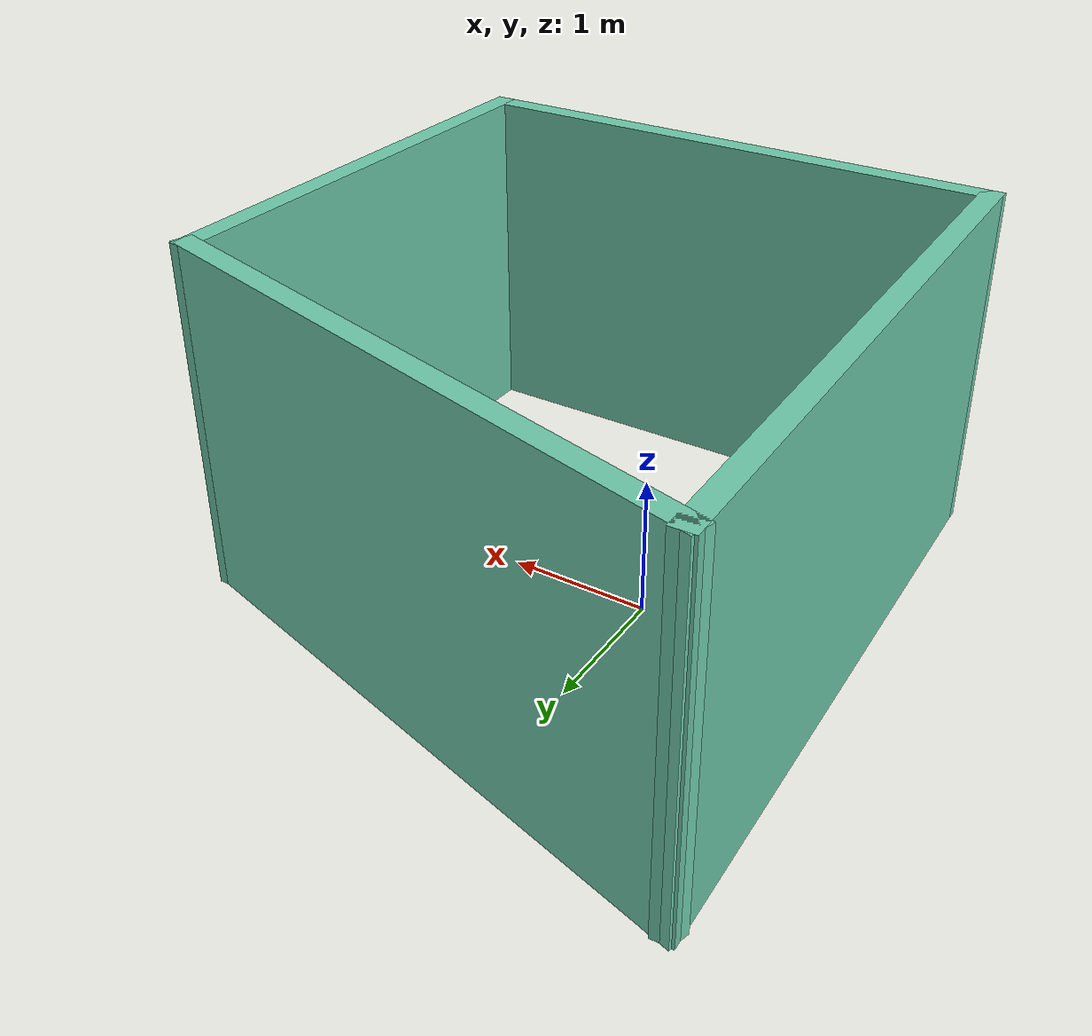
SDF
<?xml version='1.0'?>
<sdf version='1.7'>
  <model name='custwalls'>
    <pose>0.565891 0.055001 0 0 -0 0</pose>
    <link name='Wall_13'>
      <collision name='Wall_13_Collision'>
        <geometry>
          <box>
            <size>4 0.15 2.5</size>
          </box>
        </geometry>
        <pose>0 0 1.25 0 -0 0</pose>
      </collision>
      <visual name='Wall_13_Visual'>
        <pose>0 0 1.25 0 -0 0</pose>
        <geometry>
          <box>
            <size>4 0.15 2.5</size>
          </box>
        </geometry>
        <material>
          <script>
            <uri>file://media/materials/scripts/gazebo.material</uri>
            <name>Gazebo/Grey</name>
          </script>
          <ambient>0.435294 0.796078 0.67451 1</ambient>
        </material>
        <meta>
          <layer>0</layer>
        </meta>
      </visual>
      <pose>0.055148 -2.21308 0 0 -0 0</pose>
    </link>
    <link name='Wall_14'>
      <collision name='Wall_14_Collision'>
        <geometry>
          <box>
            <size>3.5 0.15 2.5</size>
          </box>
        </geometry>
        <pose>0 0 1.25 0 -0 0</pose>
      </collision>
      <visual name='Wall_14_Visual'>
        <pose>0 0 1.25 0 -0 0</pose>
        <geometry>
          <box>
            <size>3.5 0.15 2.5</size>
          </box>
        </geometry>
        <material>
          <script>
            <uri>file://media/materials/scripts/gazebo.material</uri>
            <name>Gazebo/Grey</name>
          </script>
          <ambient>0.435294 0.796078 0.67451 1</ambient>
        </material>
        <meta>
          <layer>0</layer>
        </meta>
      </visual>
      <pose>1.98015 -0.538081 0 0 -0 1.5708</pose>
    </link>
    <link name='Wall_15'>
      <collision name='Wall_15_Collision'>
        <geometry>
          <box>
            <size>4.25 0.15 2.5</size>
          </box>
        </geometry>
        <pose>0 0 1.25 0 -0 0</pose>
      </collision>
      <visual name='Wall_15_Visual'>
        <pose>0 0 1.25 0 -0 0</pose>
        <geometry>
          <box>
            <size>4.25 0.15 2.5</size>
          </box>
        </geometry>
        <material>
          <script>
            <uri>file://media/materials/scripts/gazebo.material</uri>
            <name>Gazebo/Grey</name>
          </script>
          <ambient>0.435294 0.796078 0.67451 1</ambient>
        </material>
        <meta>
          <layer>0</layer>
        </meta>
      </visual>
      <pose>0 1.6675 0 0 -0 2.87979</pose>
    </link>
    <link name='Wall_16'>
      <collision name='Wall_16_Collision'>
        <geometry>
          <box>
            <size>4.56254 0.15 2.5</size>
          </box>
        </geometry>
        <pose>0 0 1.25 0 -0 0</pose>
      </collision>
      <visual name='Wall_16_Visual'>
        <pose>0 0 1.25 0 -0 0</pose>
        <geometry>
          <box>
            <size>4.56254 0.15 2.5</size>
          </box>
        </geometry>
        <material>
          <script>
            <uri>file://media/materials/scripts/gazebo.material</uri>
            <name>Gazebo/Grey</name>
          </script>
          <ambient>0.435294 0.796078 0.67451 1</ambient>
        </material>
        <meta>
          <layer>0</layer>
        </meta>
      </visual>
      <pose>-1.925 -0.007502 0 0 -0 -1.5458</pose>
    </link>
    <static>1</static>
  </model>
</sdf>
